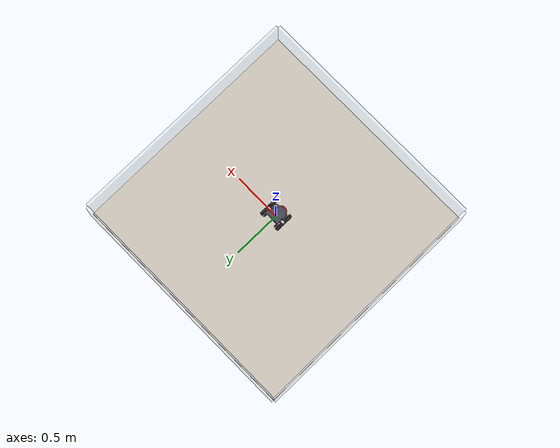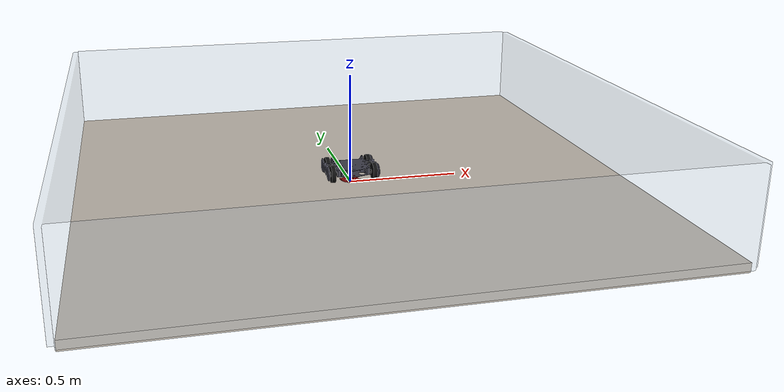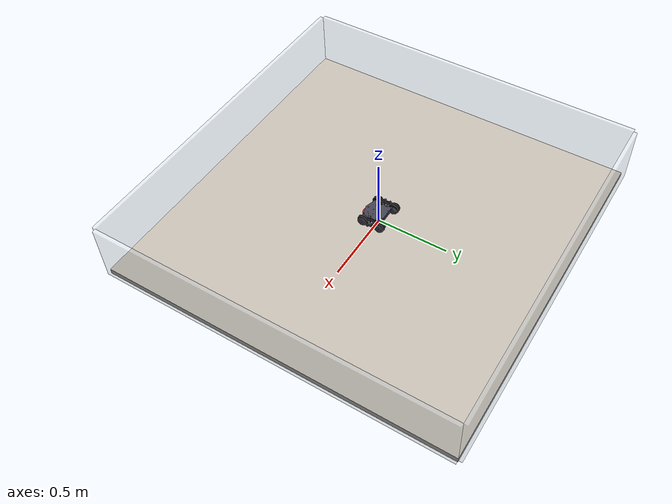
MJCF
<mujoco model="nhrl_arena_8x8">
  <compiler angle="degree" coordinate="local"/>
  <option gravity="0 0 -9.81" timestep="0.002"/>

  <visual>
    <headlight ambient="0.35 0.35 0.35" diffuse="0.7 0.7 0.7" specular="0.1 0.1 0.1"/>
    <map znear="0.01"/>
    <quality shadowsize="2048"/>
  </visual>

  <asset>
    <!-- Arena floor is 8ft x 8ft = 2.4384m x 2.4384m -->
    <texture name="floor_nhrl" type="2d" file="textures/nhrl_floor_texture.png"/>
    <material name="mat_floor" texture="floor_nhrl" texrepeat="1 1" reflectance="0.05" rgba="1 1 1 1"/>
    <material name="mat_wall" rgba="0.7 0.75 0.8 0.25" specular="0.2"/>
    <!-- Replace with your CAD exports (STL/OBJ) -->
    <mesh name="chassis_mesh" file="meshes/huey_base.stl" scale="0.001 0.001 0.001"/>
    <mesh name="top_left_wheel_mesh" file="meshes/top_left_wheel.stl" scale="0.001 0.001 0.001"/>
    <mesh name="bottom_left_wheel_mesh" file="meshes/bottom_left_wheel.stl" scale="0.001 0.001 0.001"/>
    <mesh name="top_right_wheel_mesh" file="meshes/top_right_wheel.stl" scale="0.001 0.001 0.001"/>
    <mesh name="bottom_right_wheel_mesh" file="meshes/bottom_right_wheel.stl" scale="0.001 0.001 0.001"/>
    <mesh name="weapon_mesh" file="meshes/weapon.stl" scale="0.0009 0.0009 0.0009"/>
  </asset>

  <default>
    <geom friction="1.0 0.02 0.001" condim="3"/>
    <joint damping="0.1" armature="0.001"/>
    <motor ctrllimited="true" ctrlrange="-1 1"/>

    <default class="wheel_joint">
      <joint damping="0.35" armature="0.004"/>
    </default>
    <default class="wheel_geom">
      <geom friction="2.2 0.01 0.0005" contype="1" conaffinity="1"/>
    </default>
  </default>

  <worldbody>
    <light name="arena_light_1" pos="0 0 3.0" dir="0 0 -1" directional="true" diffuse="1 1 1"/>
    <light name="arena_light_2" pos="1.5 -1.5 2.5" diffuse="0.6 0.6 0.6"/>

    <!-- Floor top surface at z = 0 -->
    <geom name="arena_floor"
          type="box"
          size="1.2192 1.2192 0.02"
          pos="0 0 0"
          material="mat_floor"
          contype="1"
          conaffinity="1"/>

    <!-- Approximate NHRL lexan/perimeter boundary walls -->
    <geom name="north_wall" type="box" size="1.2192 0.0127 0.2032" pos="0 1.2319 0.2032" material="mat_wall" contype="1" conaffinity="1"/>
    <geom name="south_wall" type="box" size="1.2192 0.0127 0.2032" pos="0 -1.2319 0.2032" material="mat_wall" contype="1" conaffinity="1"/>
    <geom name="east_wall"  type="box" size="0.0127 1.2192 0.2032" pos="1.2319 0 0.2032" material="mat_wall" contype="1" conaffinity="1"/>
    <geom name="west_wall"  type="box" size="0.0127 1.2192 0.2032" pos="-1.2319 0 0.2032" material="mat_wall" contype="1" conaffinity="1"/>

    <!-- Default robot so arena file is immediately drivable -->
    <body name="robot" pos="0 0 0.035">
      <freejoint/>

      <!-- Option A: quick primitive chassis for tuning-->
      <!-- 3 lb bot target mass split: chassis 0.90kg, weapon 0.34kg, wheels 0.03kg each -->
      <!-- Hidden low ballast to keep center of mass down and reduce tipping/floaty feel -->
      -->

      <!-- Option B: visual mesh + simpler collision proxy -->
      <geom type="mesh" mesh="chassis_mesh" rgba="0.25 0.25 0.3 1" contype="0" conaffinity="0"/>

      <!-- Left drive wheels -->
      <body name="wheel_front_left" pos="0.09 -0.06 0.03">
        <joint name="wheel_front_left_joint" class="wheel_joint" type="hinge" axis="1 0 0"/>
        <geom type="mesh" mesh="top_left_wheel_mesh" rgba="0.05 0.05 0.05 1"/>
      </body>

      <body name="wheel_rear_left" pos="0.09 0.06 0.03">
        <joint name="wheel_rear_left_joint" class="wheel_joint" type="hinge" axis="1 0 0"/>
        <geom type="mesh" mesh="bottom_left_wheel_mesh" rgba="0.05 0.05 0.05 1"/>
      </body>

      <!-- Right drive wheels -->
      <body name="wheel_front_right" pos="-0.09 -0.06 0.03">
        <joint name="wheel_front_right_joint" class="wheel_joint" type="hinge" axis="1 0 0"/>
        <geom type="mesh" mesh="top_right_wheel_mesh" rgba="0.05 0.05 0.05 1"/>
      </body>

      <body name="wheel_rear_right" pos="-0.09 0.06 0.03">
        <joint name="wheel_rear_right_joint" class="wheel_joint" type="hinge" axis="1 0 0"/>
        <geom type="mesh" mesh="bottom_right_wheel_mesh" rgba="0.05 0.05 0.05 1"/>
      </body>

      <!-- Front-bottom horizontal spinner (flat-ish square) -->
      <body name="weapon" pos="0 -0.06 0">
        <joint name="weapon_joint" type="hinge" pos = "0 0 0" axis="0 0 1"/>
        <geom type="mesh" mesh="weapon_mesh" rgba="0.75 0.1 0.1 1"/>
      </body>
    </body>

    <camera name="iso" pos="2.8 -2.8 2.0" xyaxes="0.707 0.707 0 -0.4 0.4 0.82"/>
    <camera name="top_down" pos="0 0 3.2" xyaxes="1 0 0 0 1 0"/>
  </worldbody>

  <statistic center="0 0 0" extent="2.0"/>

  <actuator>
    <motor name="left_front_drive_motor"  joint="wheel_front_left_joint"  gear="0.9" ctrllimited="true" ctrlrange="-45 45"/>
    <motor name="left_rear_drive_motor"   joint="wheel_rear_left_joint"   gear="0.9" ctrllimited="true" ctrlrange="-45 45"/>
    <motor name="right_front_drive_motor" joint="wheel_front_right_joint" gear="0.9" ctrllimited="true" ctrlrange="-45 45"/>
    <motor name="right_rear_drive_motor"  joint="wheel_rear_right_joint"  gear="0.9" ctrllimited="true" ctrlrange="-45 45"/>
    <motor name="weapon_motor"      joint="weapon_joint"      gear="0.16" ctrllimited="true" ctrlrange="0 130"/>
  </actuator>
</mujoco>
